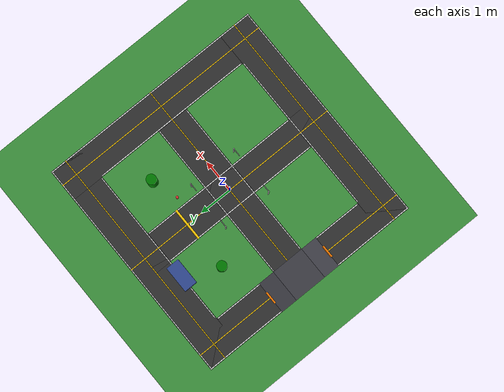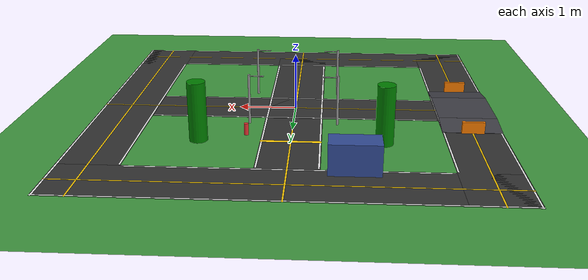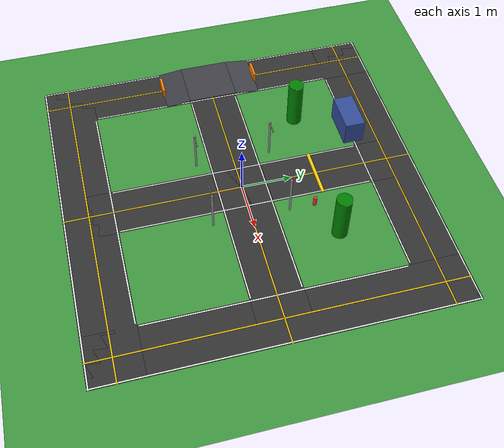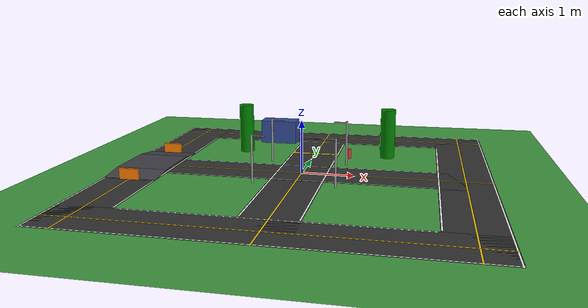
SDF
<sdf version="1.9">
 <world name="city_world">
  <physics name="default_physics" type="ode">
   <max_step_size>0.001</max_step_size>
   <real_time_factor>1.0</real_time_factor>
   <real_time_update_rate>1000</real_time_update_rate>
  </physics>
  <plugin filename="gz-sim-physics-system" name="gz::sim::systems::Physics"/>
  <plugin filename="gz-sim-sensors-system" name="gz::sim::systems::Sensors">
   <render_engine>ogre2</render_engine>
  </plugin>
  <plugin filename="gz-sim-user-commands-system" name="gz::sim::systems::UserCommands"/>
  <plugin filename="gz-sim-scene-broadcaster-system" name="gz::sim::systems::SceneBroadcaster"/>
  <plugin filename="gz-sim-contact-system" name="gz::sim::systems::Contact"/>
  <light type="directional" name="sun">
   <pose>0.0000 0.0000 5.0000 0 0 0</pose>
   <diffuse>0.9 0.9 0.9 1</diffuse>
   <specular>0.3 0.3 0.3 1</specular>
   <direction>-0.3 0.2 -0.9</direction>
  </light>
  <model name="base_ground">
   <static>true</static>
   <link name="link">
    <collision name="collision">
     <geometry><plane><normal>0 0 1</normal><size>15.0000 15.0000</size></plane></geometry>
    </collision>
    <visual name="visual">
     <geometry><plane><normal>0 0 1</normal><size>15.0000 15.0000</size></plane></geometry>
     <material>
      <ambient>0.2 0.5 0.2 1</ambient>
      <diffuse>0.25 0.6 0.25 1</diffuse>
      <specular>0.1 0.1 0.1 1</specular>
     </material>
    </visual>
   </link>
  </model>
  <model name="road_network">
   <static>true</static>
   <link name="link">
    <visual name="ns_boulevard">
     <pose>0.0000 0.0000 0.0003 0 0 0</pose>
     <geometry><box><size>1.0000 6.0000 0.0005</size></box></geometry>
     <material><ambient>0.18 0.18 0.18 1</ambient><diffuse>0.2 0.2 0.2 1</diffuse></material>
    </visual>
    <visual name="ew_avenue">
     <pose>0.0000 0.0000 0.0003 0 0 0</pose>
     <geometry><box><size>6.0000 1.0000 0.0005</size></box></geometry>
     <material><ambient>0.18 0.18 0.18 1</ambient><diffuse>0.2 0.2 0.2 1</diffuse></material>
    </visual>
    <visual name="ring_north">
     <pose>0.0000 3.0000 0.0003 0 0 0</pose>
     <geometry><box><size>7.0000 1.0000 0.0005</size></box></geometry>
     <material><ambient>0.18 0.18 0.18 1</ambient><diffuse>0.2 0.2 0.2 1</diffuse></material>
    </visual>
    <visual name="ring_south">
     <pose>0.0000 -3.0000 0.0003 0 0 0</pose>
     <geometry><box><size>7.0000 1.0000 0.0005</size></box></geometry>
     <material><ambient>0.18 0.18 0.18 1</ambient><diffuse>0.2 0.2 0.2 1</diffuse></material>
    </visual>
    <visual name="ring_east">
     <pose>3.0000 0.0000 0.0003 0 0 0</pose>
     <geometry><box><size>1.0000 7.0000 0.0005</size></box></geometry>
     <material><ambient>0.18 0.18 0.18 1</ambient><diffuse>0.2 0.2 0.2 1</diffuse></material>
    </visual>
    <visual name="ring_west">
     <pose>-3.0000 0.0000 0.0003 0 0 0</pose>
     <geometry><box><size>1.0000 7.0000 0.0005</size></box></geometry>
     <material><ambient>0.18 0.18 0.18 1</ambient><diffuse>0.2 0.2 0.2 1</diffuse></material>
    </visual>
    <visual name="border_n_ext">
     <pose>0.0000 3.4750 0.0005 0 0 0</pose>
     <geometry><box><size>7.0000 0.0250 0.0005</size></box></geometry>
     <material><ambient>1 1 1 1</ambient></material>
    </visual>
    <visual name="border_s_ext">
     <pose>0.0000 -3.4750 0.0005 0 0 0</pose>
     <geometry><box><size>7.0000 0.0250 0.0005</size></box></geometry>
     <material><ambient>1 1 1 1</ambient></material>
    </visual>
    <visual name="border_e_ext">
     <pose>3.4750 0.0000 0.0005 0 0 0</pose>
     <geometry><box><size>0.0250 7.0000 0.0005</size></box></geometry>
     <material><ambient>1 1 1 1</ambient></material>
    </visual>
    <visual name="border_w_ext">
     <pose>-3.4750 0.0000 0.0005 0 0 0</pose>
     <geometry><box><size>0.0250 7.0000 0.0005</size></box></geometry>
     <material><ambient>1 1 1 1</ambient></material>
    </visual>
    <visual name="border_n_int">
     <pose>0.0000 2.5250 0.0005 0 0 0</pose>
     <geometry><box><size>4.9500 0.0250 0.0005</size></box></geometry>
     <material><ambient>1 1 1 1</ambient></material>
    </visual>
    <visual name="border_s_int">
     <pose>0.0000 -2.5250 0.0005 0 0 0</pose>
     <geometry><box><size>4.9500 0.0250 0.0005</size></box></geometry>
     <material><ambient>1 1 1 1</ambient></material>
    </visual>
    <visual name="border_e_int">
     <pose>2.5250 0.0000 0.0005 0 0 0</pose>
     <geometry><box><size>0.0250 4.9500 0.0005</size></box></geometry>
     <material><ambient>1 1 1 1</ambient></material>
    </visual>
    <visual name="border_w_int">
     <pose>-2.5250 0.0000 0.0005 0 0 0</pose>
     <geometry><box><size>0.0250 4.9500 0.0005</size></box></geometry>
     <material><ambient>1 1 1 1</ambient></material>
    </visual>
    <visual name="border_ew_n">
     <pose>0.0000 0.4750 0.0005 0 0 0</pose>
     <geometry><box><size>4.9500 0.0250 0.0005</size></box></geometry>
     <material><ambient>1 1 1 1</ambient></material>
    </visual>
    <visual name="border_ew_s">
     <pose>0.0000 -0.4750 0.0005 0 0 0</pose>
     <geometry><box><size>4.9500 0.0250 0.0005</size></box></geometry>
     <material><ambient>1 1 1 1</ambient></material>
    </visual>
    <visual name="border_ns_e">
     <pose>0.4750 0.0000 0.0005 0 0 0</pose>
     <geometry><box><size>0.0250 4.9500 0.0005</size></box></geometry>
     <material><ambient>1 1 1 1</ambient></material>
    </visual>
    <visual name="border_ns_w">
     <pose>-0.4750 0.0000 0.0005 0 0 0</pose>
     <geometry><box><size>0.0250 4.9500 0.0005</size></box></geometry>
     <material><ambient>1 1 1 1</ambient></material>
    </visual>
    <visual name="center_ns">
     <pose>0.0000 0.0000 0.0008 0 0 0</pose>
     <geometry><box><size>0.0250 7.0000 0.0005</size></box></geometry>
     <material><ambient>1 0.8 0 1</ambient></material>
    </visual>
    <visual name="center_ew">
     <pose>0.0000 0.0000 0.0008 0 0 0</pose>
     <geometry><box><size>7.0000 0.0250 0.0005</size></box></geometry>
     <material><ambient>1 0.8 0 1</ambient></material>
    </visual>
    <visual name="center_n_ring">
     <pose>0.0000 3.0000 0.0008 0 0 0</pose>
     <geometry><box><size>7.0000 0.0250 0.0005</size></box></geometry>
     <material><ambient>1 0.8 0 1</ambient></material>
    </visual>
    <visual name="center_s_ring">
     <pose>0.0000 -3.0000 0.0008 0 0 0</pose>
     <geometry><box><size>7.0000 0.0250 0.0005</size></box></geometry>
     <material><ambient>1 0.8 0 1</ambient></material>
    </visual>
    <visual name="center_e_ring">
     <pose>3.0000 0.0000 0.0008 0 0 0</pose>
     <geometry><box><size>0.0250 7.0000 0.0005</size></box></geometry>
     <material><ambient>1 0.8 0 1</ambient></material>
    </visual>
    <visual name="center_w_ring">
     <pose>-3.0000 0.0000 0.0008 0 0 0</pose>
     <geometry><box><size>0.0250 7.0000 0.0005</size></box></geometry>
     <material><ambient>1 0.8 0 1</ambient></material>
    </visual>
   </link>
  </model>
  <model name="standard_speed_bump">
   <static>true</static>
   <pose>0.0000 1.5000 -0.0525 1.5708 0 1.5708</pose>
   <link name="link">
    <collision name="collision">
     <geometry><cylinder><radius>0.0625</radius><length>1.0000</length></cylinder></geometry>
    </collision>
    <visual name="yellow_base">
     <geometry><cylinder><radius>0.0625</radius><length>1.0000</length></cylinder></geometry>
     <material><ambient>1.0 0.8 0.0 1</ambient><diffuse>1.0 0.8 0.0 1</diffuse></material>
    </visual>
   </link>
  </model>
  <model name="road_incline_decline">
   <static>true</static>
   <pose>-3.0000 0.0000 0.0312 0 0 0</pose>
   <link name="incline_ramp">
    <pose>0.0000 -0.7500 0.0000 0.124 0 0</pose>
    <collision name="collision"><geometry><box><size>1.0000 0.5050 0.0125</size></box></geometry></collision>
    <visual name="visual">
     <geometry><box><size>1.0000 0.5050 0.0125</size></box></geometry>
     <material><ambient>0.2 0.2 0.22 1</ambient><diffuse>0.25 0.25 0.28 1</diffuse></material>
    </visual>
   </link>
   <link name="bridge_plateau">
    <pose>0.0000 0.0000 0.0312 0 0 0</pose>
    <collision name="collision"><geometry><box><size>1.0000 1.0000 0.0125</size></box></geometry></collision>
    <visual name="visual">
     <geometry><box><size>1.0000 1.0000 0.0125</size></box></geometry>
     <material><ambient>0.2 0.2 0.22 1</ambient><diffuse>0.25 0.25 0.28 1</diffuse></material>
    </visual>
   </link>
   <link name="decline_ramp">
    <pose>0.0000 0.7500 0.0000 -0.124 0 0</pose>
    <collision name="collision"><geometry><box><size>1.0000 0.5050 0.0125</size></box></geometry></collision>
    <visual name="visual">
     <geometry><box><size>1.0000 0.5050 0.0125</size></box></geometry>
     <material><ambient>0.2 0.2 0.22 1</ambient><diffuse>0.25 0.25 0.28 1</diffuse></material>
    </visual>
   </link>
  </model>
  <model name="street_light_1">
   <static>true</static>
   <pose>0.7500 0.7500 0.0000 0 0 0</pose>
   <link name="link">
    <visual name="pole">
     <pose>0.0000 0.0000 0.4375 0 0 0</pose>
     <geometry><cylinder><radius>0.0200</radius><length>0.8750</length></cylinder></geometry>
     <material><ambient>0.5 0.5 0.5 1</ambient><diffuse>0.6 0.6 0.6 1</diffuse></material>
    </visual>
    <visual name="arm">
     <pose>-0.1250 0.0000 0.8500 0 1.5708 0</pose>
     <geometry><cylinder><radius>0.0100</radius><length>0.2500</length></cylinder></geometry>
     <material><ambient>0.5 0.5 0.5 1</ambient><diffuse>0.6 0.6 0.6 1</diffuse></material>
    </visual>
    <collision name="collision">
     <pose>0.0000 0.0000 0.4375 0 0 0</pose>
     <geometry><cylinder><radius>0.0200</radius><length>0.8750</length></cylinder></geometry>
    </collision>
   </link>
  </model>
  <model name="street_light_2">
   <static>true</static>
   <pose>-0.7500 0.7500 0.0000 0 0 3.1415</pose>
   <link name="link">
    <visual name="pole">
     <pose>0.0000 0.0000 0.4375 0 0 0</pose>
     <geometry><cylinder><radius>0.0200</radius><length>0.8750</length></cylinder></geometry>
     <material><ambient>0.5 0.5 0.5 1</ambient><diffuse>0.6 0.6 0.6 1</diffuse></material>
    </visual>
    <visual name="arm">
     <pose>-0.1250 0.0000 0.8500 0 1.5708 0</pose>
     <geometry><cylinder><radius>0.0100</radius><length>0.2500</length></cylinder></geometry>
     <material><ambient>0.5 0.5 0.5 1</ambient><diffuse>0.6 0.6 0.6 1</diffuse></material>
    </visual>
    <collision name="collision">
     <pose>0.0000 0.0000 0.4375 0 0 0</pose>
     <geometry><cylinder><radius>0.0200</radius><length>0.8750</length></cylinder></geometry>
    </collision>
   </link>
  </model>
  <model name="street_light_3">
   <static>true</static>
   <pose>-0.7500 -0.7500 0.0000 0 0 3.1415</pose>
   <link name="link">
    <visual name="pole">
     <pose>0.0000 0.0000 0.4375 0 0 0</pose>
     <geometry><cylinder><radius>0.0200</radius><length>0.8750</length></cylinder></geometry>
     <material><ambient>0.5 0.5 0.5 1</ambient><diffuse>0.6 0.6 0.6 1</diffuse></material>
    </visual>
    <visual name="arm">
     <pose>-0.1250 0.0000 0.8500 0 1.5708 0</pose>
     <geometry><cylinder><radius>0.0100</radius><length>0.2500</length></cylinder></geometry>
     <material><ambient>0.5 0.5 0.5 1</ambient><diffuse>0.6 0.6 0.6 1</diffuse></material>
    </visual>
    <collision name="collision">
     <pose>0.0000 0.0000 0.4375 0 0 0</pose>
     <geometry><cylinder><radius>0.0200</radius><length>0.8750</length></cylinder></geometry>
    </collision>
   </link>
  </model>
  <model name="street_light_4">
   <static>true</static>
   <pose>0.7500 -0.7500 0.0000 0 0 0</pose>
   <link name="link">
    <visual name="pole">
     <pose>0.0000 0.0000 0.4375 0 0 0</pose>
     <geometry><cylinder><radius>0.0200</radius><length>0.8750</length></cylinder></geometry>
     <material><ambient>0.5 0.5 0.5 1</ambient><diffuse>0.6 0.6 0.6 1</diffuse></material>
    </visual>
    <visual name="arm">
     <pose>-0.1250 0.0000 0.8500 0 1.5708 0</pose>
     <geometry><cylinder><radius>0.0100</radius><length>0.2500</length></cylinder></geometry>
     <material><ambient>0.5 0.5 0.5 1</ambient><diffuse>0.6 0.6 0.6 1</diffuse></material>
    </visual>
    <collision name="collision">
     <pose>0.0000 0.0000 0.4375 0 0 0</pose>
     <geometry><cylinder><radius>0.0200</radius><length>0.8750</length></cylinder></geometry>
    </collision>
   </link>
  </model>
  <model name="barricade_1">
   <static>true</static>
   <pose>-3.0000 -1.0000 0.1000 0 0 0</pose>
   <link name="link">
    <visual name="visual">
     <geometry><box><size>0.3750 0.0500 0.2000</size></box></geometry>
     <material><ambient>1 0.5 0 1</ambient><diffuse>1 0.5 0 1</diffuse></material>
    </visual>
    <collision name="collision"><geometry><box><size>0.3750 0.0500 0.2000</size></box></geometry></collision>
   </link>
  </model>
  <model name="barricade_2">
   <static>true</static>
   <pose>-3.0000 1.0000 0.1000 0 0 0</pose>
   <link name="link">
    <visual name="visual">
     <geometry><box><size>0.3750 0.0500 0.2000</size></box></geometry>
     <material><ambient>1 0.5 0 1</ambient><diffuse>1 0.5 0 1</diffuse></material>
    </visual>
    <collision name="collision"><geometry><box><size>0.3750 0.0500 0.2000</size></box></geometry></collision>
   </link>
  </model>
  <model name="fire_hydrant">
   <static>true</static>
   <pose>0.7500 1.2500 0.1000 0 0 0</pose>
   <link name="link">
    <visual name="visual">
     <geometry><cylinder><radius>0.0375</radius><length>0.2000</length></cylinder></geometry>
     <material><ambient>0.8 0.1 0.1 1</ambient><diffuse>0.9 0.2 0.2 1</diffuse></material>
    </visual>
    <collision name="collision">
     <geometry><cylinder><radius>0.0375</radius><length>0.2000</length></cylinder></geometry>
    </collision>
   </link>
  </model>
  <model name="mini_tree_1">
   <static>true</static>
   <pose>1.5 1.5 0.5 0 0 0</pose>
   <link name="link">
    <visual name="visual">
     <geometry><cylinder><radius>0.15</radius><length>1.0</length></cylinder></geometry>
     <material><ambient>0 0.5 0 1</ambient><diffuse>0 0.5 0 1</diffuse></material>
    </visual>
    <collision name="collision">
     <geometry><cylinder><radius>0.15</radius><length>1.0</length></cylinder></geometry>
    </collision>
   </link>
  </model>
  <model name="mini_tree_2">
   <static>true</static>
   <pose>-1.5 1.5 0.5 0 0 0</pose>
   <link name="link">
    <visual name="visual">
     <geometry><cylinder><radius>0.15</radius><length>1.0</length></cylinder></geometry>
     <material><ambient>0 0.5 0 1</ambient><diffuse>0 0.5 0 1</diffuse></material>
    </visual>
    <collision name="collision">
     <geometry><cylinder><radius>0.15</radius><length>1.0</length></cylinder></geometry>
    </collision>
   </link>
  </model>
  <model name="mini_dumpster">
   <static>true</static>
   <pose>-1.0 2.5 0.25 0 0 0</pose>
   <link name="link">
    <visual name="visual">
     <geometry><box><size>0.8 0.4 0.5</size></box></geometry>
     <material><ambient>0.2 0.3 0.6 1</ambient><diffuse>0.2 0.3 0.6 1</diffuse></material>
    </visual>
    <collision name="collision"><geometry><box><size>0.8 0.4 0.5</size></box></geometry></collision>
   </link>
  </model>
 </world>
</sdf>
